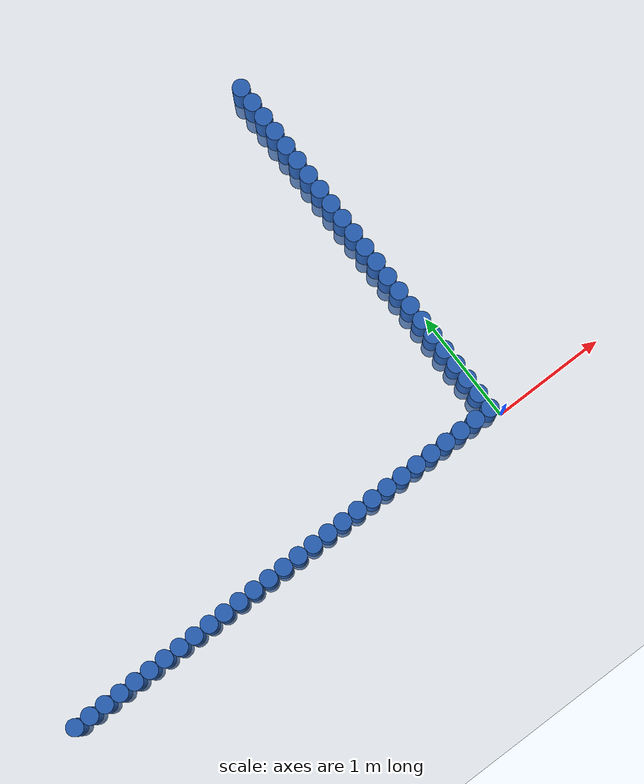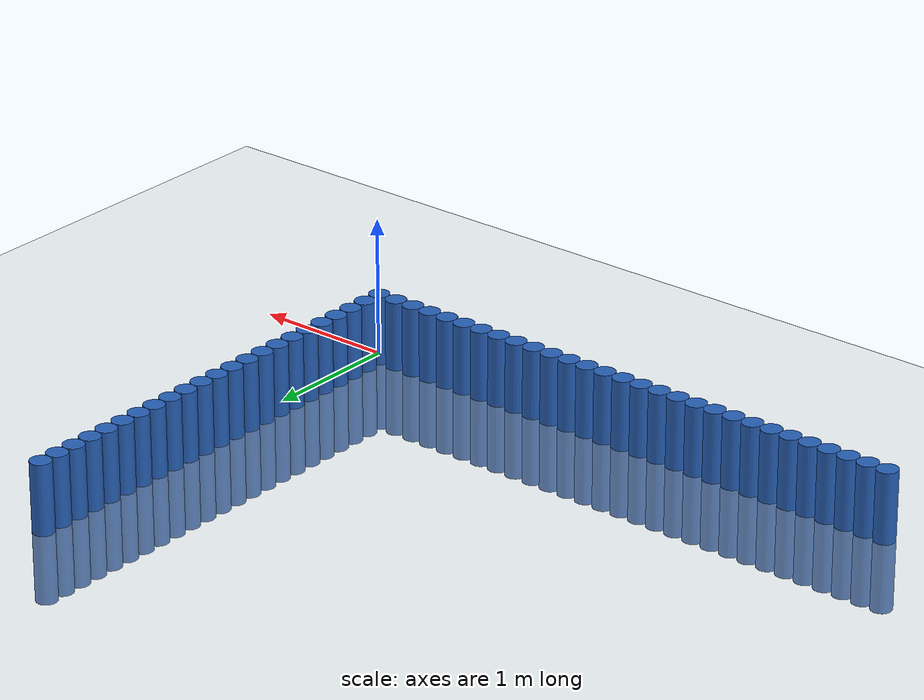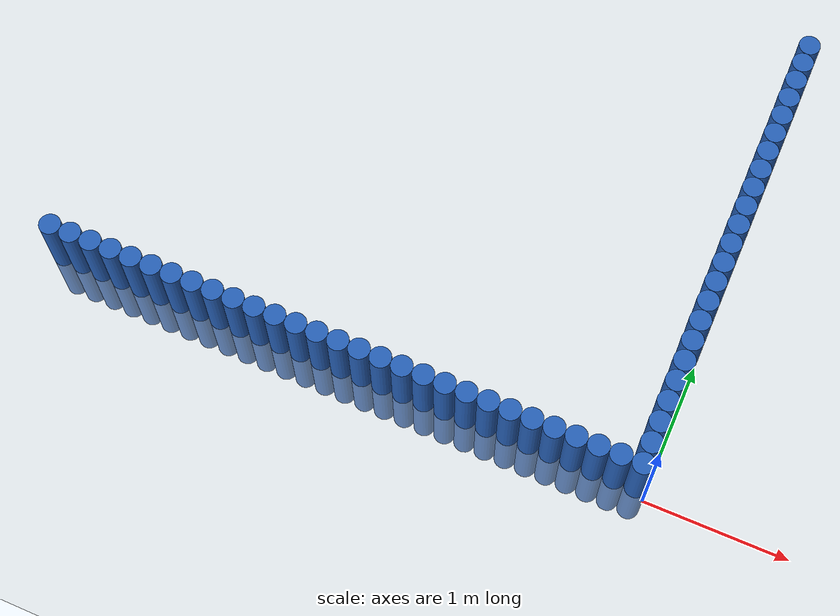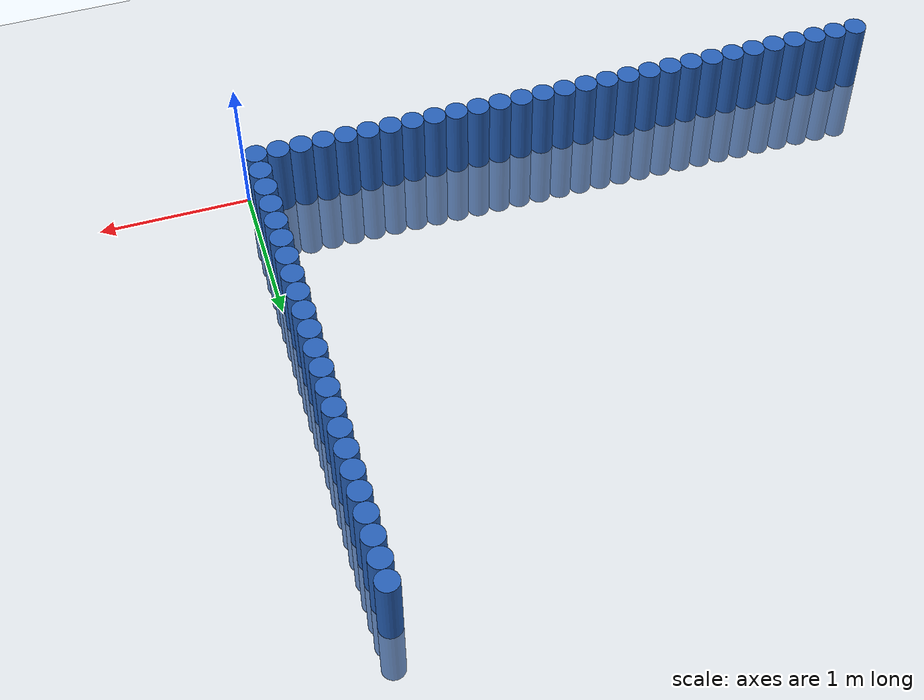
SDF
<sdf version="1.6">
 <world name="default">
  <model name="ground_plane">
   <static>1</static>
   <link name="link">
    <collision name="collision">
     <geometry><plane><normal>0 0 1</normal><size>100 100</size></plane></geometry>
     <surface><friction><ode><mu>100</mu><mu2>50</mu2></ode></friction></surface>
    </collision>
    <visual name="visual">
     <cast_shadows>0</cast_shadows>
     <geometry><plane><normal>0 0 1</normal><size>100 100</size></plane></geometry>
     <material>
      <script><uri>file://media/materials/scripts/gazebo.material</uri><name>Gazebo/Grey</name></script>
     </material>
    </visual>
   </link>
  </model>
  <model name="unit_cylinder_0">
   <static>1</static>
   <pose>-0.075000 0.075000 0.000000 0.000000 0.000000 0.000000</pose>
   <link name="link">
    <inertial>
     <mass>1</mass>
     <inertia><ixx>0.145833</ixx><ixy>0</ixy><ixz>0</ixz><iyy>0.145833</iyy><iyz>0</iyz><izz>0.125</izz></inertia>
    </inertial>
    <collision name="collision">
     <geometry><cylinder><radius>0.075000</radius><length>1</length></cylinder></geometry>
    </collision>
    <visual name="visual">
     <geometry><cylinder><radius>0.075000</radius><length>1</length></cylinder></geometry>
     <material>
      <ambient>0.152000 0.379000 0.720000 1</ambient>
      <diffuse>0.152000 0.379000 0.720000 1</diffuse>
     </material>
     <material>
      <script><name>Gazebo/Grey</name><uri>file://media/materials/scripts/gazebo.material</uri></script>
     </material>
    </visual>
   </link>
  </model>
  <model name="unit_cylinder_1">
   <static>1</static>
   <pose>-0.225000 0.075000 0.000000 0.000000 0.000000 0.000000</pose>
   <link name="link">
    <inertial>
     <mass>1</mass>
     <inertia><ixx>0.145833</ixx><ixy>0</ixy><ixz>0</ixz><iyy>0.145833</iyy><iyz>0</iyz><izz>0.125</izz></inertia>
    </inertial>
    <collision name="collision">
     <geometry><cylinder><radius>0.075000</radius><length>1</length></cylinder></geometry>
    </collision>
    <visual name="visual">
     <geometry><cylinder><radius>0.075000</radius><length>1</length></cylinder></geometry>
     <material>
      <ambient>0.152000 0.379000 0.720000 1</ambient>
      <diffuse>0.152000 0.379000 0.720000 1</diffuse>
     </material>
     <material>
      <script><name>Gazebo/Grey</name><uri>file://media/materials/scripts/gazebo.material</uri></script>
     </material>
    </visual>
   </link>
  </model>
  <model name="unit_cylinder_2">
   <static>1</static>
   <pose>-0.375000 0.075000 0.000000 0.000000 0.000000 0.000000</pose>
   <link name="link">
    <inertial>
     <mass>1</mass>
     <inertia><ixx>0.145833</ixx><ixy>0</ixy><ixz>0</ixz><iyy>0.145833</iyy><iyz>0</iyz><izz>0.125</izz></inertia>
    </inertial>
    <collision name="collision">
     <geometry><cylinder><radius>0.075000</radius><length>1</length></cylinder></geometry>
    </collision>
    <visual name="visual">
     <geometry><cylinder><radius>0.075000</radius><length>1</length></cylinder></geometry>
     <material>
      <ambient>0.152000 0.379000 0.720000 1</ambient>
      <diffuse>0.152000 0.379000 0.720000 1</diffuse>
     </material>
     <material>
      <script><name>Gazebo/Grey</name><uri>file://media/materials/scripts/gazebo.material</uri></script>
     </material>
    </visual>
   </link>
  </model>
  <model name="unit_cylinder_3">
   <static>1</static>
   <pose>-0.525000 0.075000 0.000000 0.000000 0.000000 0.000000</pose>
   <link name="link">
    <inertial>
     <mass>1</mass>
     <inertia><ixx>0.145833</ixx><ixy>0</ixy><ixz>0</ixz><iyy>0.145833</iyy><iyz>0</iyz><izz>0.125</izz></inertia>
    </inertial>
    <collision name="collision">
     <geometry><cylinder><radius>0.075000</radius><length>1</length></cylinder></geometry>
    </collision>
    <visual name="visual">
     <geometry><cylinder><radius>0.075000</radius><length>1</length></cylinder></geometry>
     <material>
      <ambient>0.152000 0.379000 0.720000 1</ambient>
      <diffuse>0.152000 0.379000 0.720000 1</diffuse>
     </material>
     <material>
      <script><name>Gazebo/Grey</name><uri>file://media/materials/scripts/gazebo.material</uri></script>
     </material>
    </visual>
   </link>
  </model>
  <model name="unit_cylinder_4">
   <static>1</static>
   <pose>-0.675000 0.075000 0.000000 0.000000 0.000000 0.000000</pose>
   <link name="link">
    <inertial>
     <mass>1</mass>
     <inertia><ixx>0.145833</ixx><ixy>0</ixy><ixz>0</ixz><iyy>0.145833</iyy><iyz>0</iyz><izz>0.125</izz></inertia>
    </inertial>
    <collision name="collision">
     <geometry><cylinder><radius>0.075000</radius><length>1</length></cylinder></geometry>
    </collision>
    <visual name="visual">
     <geometry><cylinder><radius>0.075000</radius><length>1</length></cylinder></geometry>
     <material>
      <ambient>0.152000 0.379000 0.720000 1</ambient>
      <diffuse>0.152000 0.379000 0.720000 1</diffuse>
     </material>
     <material>
      <script><name>Gazebo/Grey</name><uri>file://media/materials/scripts/gazebo.material</uri></script>
     </material>
    </visual>
   </link>
  </model>
  <model name="unit_cylinder_5">
   <static>1</static>
   <pose>-0.825000 0.075000 0.000000 0.000000 0.000000 0.000000</pose>
   <link name="link">
    <inertial>
     <mass>1</mass>
     <inertia><ixx>0.145833</ixx><ixy>0</ixy><ixz>0</ixz><iyy>0.145833</iyy><iyz>0</iyz><izz>0.125</izz></inertia>
    </inertial>
    <collision name="collision">
     <geometry><cylinder><radius>0.075000</radius><length>1</length></cylinder></geometry>
    </collision>
    <visual name="visual">
     <geometry><cylinder><radius>0.075000</radius><length>1</length></cylinder></geometry>
     <material>
      <ambient>0.152000 0.379000 0.720000 1</ambient>
      <diffuse>0.152000 0.379000 0.720000 1</diffuse>
     </material>
     <material>
      <script><name>Gazebo/Grey</name><uri>file://media/materials/scripts/gazebo.material</uri></script>
     </material>
    </visual>
   </link>
  </model>
  <model name="unit_cylinder_6">
   <static>1</static>
   <pose>-0.975000 0.075000 0.000000 0.000000 0.000000 0.000000</pose>
   <link name="link">
    <inertial>
     <mass>1</mass>
     <inertia><ixx>0.145833</ixx><ixy>0</ixy><ixz>0</ixz><iyy>0.145833</iyy><iyz>0</iyz><izz>0.125</izz></inertia>
    </inertial>
    <collision name="collision">
     <geometry><cylinder><radius>0.075000</radius><length>1</length></cylinder></geometry>
    </collision>
    <visual name="visual">
     <geometry><cylinder><radius>0.075000</radius><length>1</length></cylinder></geometry>
     <material>
      <ambient>0.152000 0.379000 0.720000 1</ambient>
      <diffuse>0.152000 0.379000 0.720000 1</diffuse>
     </material>
     <material>
      <script><name>Gazebo/Grey</name><uri>file://media/materials/scripts/gazebo.material</uri></script>
     </material>
    </visual>
   </link>
  </model>
  <model name="unit_cylinder_7">
   <static>1</static>
   <pose>-1.125000 0.075000 0.000000 0.000000 0.000000 0.000000</pose>
   <link name="link">
    <inertial>
     <mass>1</mass>
     <inertia><ixx>0.145833</ixx><ixy>0</ixy><ixz>0</ixz><iyy>0.145833</iyy><iyz>0</iyz><izz>0.125</izz></inertia>
    </inertial>
    <collision name="collision">
     <geometry><cylinder><radius>0.075000</radius><length>1</length></cylinder></geometry>
    </collision>
    <visual name="visual">
     <geometry><cylinder><radius>0.075000</radius><length>1</length></cylinder></geometry>
     <material>
      <ambient>0.152000 0.379000 0.720000 1</ambient>
      <diffuse>0.152000 0.379000 0.720000 1</diffuse>
     </material>
     <material>
      <script><name>Gazebo/Grey</name><uri>file://media/materials/scripts/gazebo.material</uri></script>
     </material>
    </visual>
   </link>
  </model>
  <model name="unit_cylinder_8">
   <static>1</static>
   <pose>-1.275000 0.075000 0.000000 0.000000 0.000000 0.000000</pose>
   <link name="link">
    <inertial>
     <mass>1</mass>
     <inertia><ixx>0.145833</ixx><ixy>0</ixy><ixz>0</ixz><iyy>0.145833</iyy><iyz>0</iyz><izz>0.125</izz></inertia>
    </inertial>
    <collision name="collision">
     <geometry><cylinder><radius>0.075000</radius><length>1</length></cylinder></geometry>
    </collision>
    <visual name="visual">
     <geometry><cylinder><radius>0.075000</radius><length>1</length></cylinder></geometry>
     <material>
      <ambient>0.152000 0.379000 0.720000 1</ambient>
      <diffuse>0.152000 0.379000 0.720000 1</diffuse>
     </material>
     <material>
      <script><name>Gazebo/Grey</name><uri>file://media/materials/scripts/gazebo.material</uri></script>
     </material>
    </visual>
   </link>
  </model>
  <model name="unit_cylinder_9">
   <static>1</static>
   <pose>-1.425000 0.075000 0.000000 0.000000 0.000000 0.000000</pose>
   <link name="link">
    <inertial>
     <mass>1</mass>
     <inertia><ixx>0.145833</ixx><ixy>0</ixy><ixz>0</ixz><iyy>0.145833</iyy><iyz>0</iyz><izz>0.125</izz></inertia>
    </inertial>
    <collision name="collision">
     <geometry><cylinder><radius>0.075000</radius><length>1</length></cylinder></geometry>
    </collision>
    <visual name="visual">
     <geometry><cylinder><radius>0.075000</radius><length>1</length></cylinder></geometry>
     <material>
      <ambient>0.152000 0.379000 0.720000 1</ambient>
      <diffuse>0.152000 0.379000 0.720000 1</diffuse>
     </material>
     <material>
      <script><name>Gazebo/Grey</name><uri>file://media/materials/scripts/gazebo.material</uri></script>
     </material>
    </visual>
   </link>
  </model>
  <model name="unit_cylinder_10">
   <static>1</static>
   <pose>-1.575000 0.075000 0.000000 0.000000 0.000000 0.000000</pose>
   <link name="link">
    <inertial>
     <mass>1</mass>
     <inertia><ixx>0.145833</ixx><ixy>0</ixy><ixz>0</ixz><iyy>0.145833</iyy><iyz>0</iyz><izz>0.125</izz></inertia>
    </inertial>
    <collision name="collision">
     <geometry><cylinder><radius>0.075000</radius><length>1</length></cylinder></geometry>
    </collision>
    <visual name="visual">
     <geometry><cylinder><radius>0.075000</radius><length>1</length></cylinder></geometry>
     <material>
      <ambient>0.152000 0.379000 0.720000 1</ambient>
      <diffuse>0.152000 0.379000 0.720000 1</diffuse>
     </material>
     <material>
      <script><name>Gazebo/Grey</name><uri>file://media/materials/scripts/gazebo.material</uri></script>
     </material>
    </visual>
   </link>
  </model>
  <model name="unit_cylinder_11">
   <static>1</static>
   <pose>-1.725000 0.075000 0.000000 0.000000 0.000000 0.000000</pose>
   <link name="link">
    <inertial>
     <mass>1</mass>
     <inertia><ixx>0.145833</ixx><ixy>0</ixy><ixz>0</ixz><iyy>0.145833</iyy><iyz>0</iyz><izz>0.125</izz></inertia>
    </inertial>
    <collision name="collision">
     <geometry><cylinder><radius>0.075000</radius><length>1</length></cylinder></geometry>
    </collision>
    <visual name="visual">
     <geometry><cylinder><radius>0.075000</radius><length>1</length></cylinder></geometry>
     <material>
      <ambient>0.152000 0.379000 0.720000 1</ambient>
      <diffuse>0.152000 0.379000 0.720000 1</diffuse>
     </material>
     <material>
      <script><name>Gazebo/Grey</name><uri>file://media/materials/scripts/gazebo.material</uri></script>
     </material>
    </visual>
   </link>
  </model>
  <model name="unit_cylinder_12">
   <static>1</static>
   <pose>-1.875000 0.075000 0.000000 0.000000 0.000000 0.000000</pose>
   <link name="link">
    <inertial>
     <mass>1</mass>
     <inertia><ixx>0.145833</ixx><ixy>0</ixy><ixz>0</ixz><iyy>0.145833</iyy><iyz>0</iyz><izz>0.125</izz></inertia>
    </inertial>
    <collision name="collision">
     <geometry><cylinder><radius>0.075000</radius><length>1</length></cylinder></geometry>
    </collision>
    <visual name="visual">
     <geometry><cylinder><radius>0.075000</radius><length>1</length></cylinder></geometry>
     <material>
      <ambient>0.152000 0.379000 0.720000 1</ambient>
      <diffuse>0.152000 0.379000 0.720000 1</diffuse>
     </material>
     <material>
      <script><name>Gazebo/Grey</name><uri>file://media/materials/scripts/gazebo.material</uri></script>
     </material>
    </visual>
   </link>
  </model>
  <model name="unit_cylinder_13">
   <static>1</static>
   <pose>-2.025000 0.075000 0.000000 0.000000 0.000000 0.000000</pose>
   <link name="link">
    <inertial>
     <mass>1</mass>
     <inertia><ixx>0.145833</ixx><ixy>0</ixy><ixz>0</ixz><iyy>0.145833</iyy><iyz>0</iyz><izz>0.125</izz></inertia>
    </inertial>
    <collision name="collision">
     <geometry><cylinder><radius>0.075000</radius><length>1</length></cylinder></geometry>
    </collision>
    <visual name="visual">
     <geometry><cylinder><radius>0.075000</radius><length>1</length></cylinder></geometry>
     <material>
      <ambient>0.152000 0.379000 0.720000 1</ambient>
      <diffuse>0.152000 0.379000 0.720000 1</diffuse>
     </material>
     <material>
      <script><name>Gazebo/Grey</name><uri>file://media/materials/scripts/gazebo.material</uri></script>
     </material>
    </visual>
   </link>
  </model>
  <model name="unit_cylinder_14">
   <static>1</static>
   <pose>-2.175000 0.075000 0.000000 0.000000 0.000000 0.000000</pose>
   <link name="link">
    <inertial>
     <mass>1</mass>
     <inertia><ixx>0.145833</ixx><ixy>0</ixy><ixz>0</ixz><iyy>0.145833</iyy><iyz>0</iyz><izz>0.125</izz></inertia>
    </inertial>
    <collision name="collision">
     <geometry><cylinder><radius>0.075000</radius><length>1</length></cylinder></geometry>
    </collision>
    <visual name="visual">
     <geometry><cylinder><radius>0.075000</radius><length>1</length></cylinder></geometry>
     <material>
      <ambient>0.152000 0.379000 0.720000 1</ambient>
      <diffuse>0.152000 0.379000 0.720000 1</diffuse>
     </material>
     <material>
      <script><name>Gazebo/Grey</name><uri>file://media/materials/scripts/gazebo.material</uri></script>
     </material>
    </visual>
   </link>
  </model>
  <model name="unit_cylinder_15">
   <static>1</static>
   <pose>-2.325000 0.075000 0.000000 0.000000 0.000000 0.000000</pose>
   <link name="link">
    <inertial>
     <mass>1</mass>
     <inertia><ixx>0.145833</ixx><ixy>0</ixy><ixz>0</ixz><iyy>0.145833</iyy><iyz>0</iyz><izz>0.125</izz></inertia>
    </inertial>
    <collision name="collision">
     <geometry><cylinder><radius>0.075000</radius><length>1</length></cylinder></geometry>
    </collision>
    <visual name="visual">
     <geometry><cylinder><radius>0.075000</radius><length>1</length></cylinder></geometry>
     <material>
      <ambient>0.152000 0.379000 0.720000 1</ambient>
      <diffuse>0.152000 0.379000 0.720000 1</diffuse>
     </material>
     <material>
      <script><name>Gazebo/Grey</name><uri>file://media/materials/scripts/gazebo.material</uri></script>
     </material>
    </visual>
   </link>
  </model>
  <model name="unit_cylinder_16">
   <static>1</static>
   <pose>-2.475000 0.075000 0.000000 0.000000 0.000000 0.000000</pose>
   <link name="link">
    <inertial>
     <mass>1</mass>
     <inertia><ixx>0.145833</ixx><ixy>0</ixy><ixz>0</ixz><iyy>0.145833</iyy><iyz>0</iyz><izz>0.125</izz></inertia>
    </inertial>
    <collision name="collision">
     <geometry><cylinder><radius>0.075000</radius><length>1</length></cylinder></geometry>
    </collision>
    <visual name="visual">
     <geometry><cylinder><radius>0.075000</radius><length>1</length></cylinder></geometry>
     <material>
      <ambient>0.152000 0.379000 0.720000 1</ambient>
      <diffuse>0.152000 0.379000 0.720000 1</diffuse>
     </material>
     <material>
      <script><name>Gazebo/Grey</name><uri>file://media/materials/scripts/gazebo.material</uri></script>
     </material>
    </visual>
   </link>
  </model>
  <model name="unit_cylinder_17">
   <static>1</static>
   <pose>-2.625000 0.075000 0.000000 0.000000 0.000000 0.000000</pose>
   <link name="link">
    <inertial>
     <mass>1</mass>
     <inertia><ixx>0.145833</ixx><ixy>0</ixy><ixz>0</ixz><iyy>0.145833</iyy><iyz>0</iyz><izz>0.125</izz></inertia>
    </inertial>
    <collision name="collision">
     <geometry><cylinder><radius>0.075000</radius><length>1</length></cylinder></geometry>
    </collision>
    <visual name="visual">
     <geometry><cylinder><radius>0.075000</radius><length>1</length></cylinder></geometry>
     <material>
      <ambient>0.152000 0.379000 0.720000 1</ambient>
      <diffuse>0.152000 0.379000 0.720000 1</diffuse>
     </material>
     <material>
      <script><name>Gazebo/Grey</name><uri>file://media/materials/scripts/gazebo.material</uri></script>
     </material>
    </visual>
   </link>
  </model>
  <model name="unit_cylinder_18">
   <static>1</static>
   <pose>-2.775000 0.075000 0.000000 0.000000 0.000000 0.000000</pose>
   <link name="link">
    <inertial>
     <mass>1</mass>
     <inertia><ixx>0.145833</ixx><ixy>0</ixy><ixz>0</ixz><iyy>0.145833</iyy><iyz>0</iyz><izz>0.125</izz></inertia>
    </inertial>
    <collision name="collision">
     <geometry><cylinder><radius>0.075000</radius><length>1</length></cylinder></geometry>
    </collision>
    <visual name="visual">
     <geometry><cylinder><radius>0.075000</radius><length>1</length></cylinder></geometry>
     <material>
      <ambient>0.152000 0.379000 0.720000 1</ambient>
      <diffuse>0.152000 0.379000 0.720000 1</diffuse>
     </material>
     <material>
      <script><name>Gazebo/Grey</name><uri>file://media/materials/scripts/gazebo.material</uri></script>
     </material>
    </visual>
   </link>
  </model>
  <model name="unit_cylinder_19">
   <static>1</static>
   <pose>-2.925000 0.075000 0.000000 0.000000 0.000000 0.000000</pose>
   <link name="link">
    <inertial>
     <mass>1</mass>
     <inertia><ixx>0.145833</ixx><ixy>0</ixy><ixz>0</ixz><iyy>0.145833</iyy><iyz>0</iyz><izz>0.125</izz></inertia>
    </inertial>
    <collision name="collision">
     <geometry><cylinder><radius>0.075000</radius><length>1</length></cylinder></geometry>
    </collision>
    <visual name="visual">
     <geometry><cylinder><radius>0.075000</radius><length>1</length></cylinder></geometry>
     <material>
      <ambient>0.152000 0.379000 0.720000 1</ambient>
      <diffuse>0.152000 0.379000 0.720000 1</diffuse>
     </material>
     <material>
      <script><name>Gazebo/Grey</name><uri>file://media/materials/scripts/gazebo.material</uri></script>
     </material>
    </visual>
   </link>
  </model>
  <model name="unit_cylinder_20">
   <static>1</static>
   <pose>-3.075000 0.075000 0.000000 0.000000 0.000000 0.000000</pose>
   <link name="link">
    <inertial>
     <mass>1</mass>
     <inertia><ixx>0.145833</ixx><ixy>0</ixy><ixz>0</ixz><iyy>0.145833</iyy><iyz>0</iyz><izz>0.125</izz></inertia>
    </inertial>
    <collision name="collision">
     <geometry><cylinder><radius>0.075000</radius><length>1</length></cylinder></geometry>
    </collision>
    <visual name="visual">
     <geometry><cylinder><radius>0.075000</radius><length>1</length></cylinder></geometry>
     <material>
      <ambient>0.152000 0.379000 0.720000 1</ambient>
      <diffuse>0.152000 0.379000 0.720000 1</diffuse>
     </material>
     <material>
      <script><name>Gazebo/Grey</name><uri>file://media/materials/scripts/gazebo.material</uri></script>
     </material>
    </visual>
   </link>
  </model>
  <model name="unit_cylinder_21">
   <static>1</static>
   <pose>-3.225000 0.075000 0.000000 0.000000 0.000000 0.000000</pose>
   <link name="link">
    <inertial>
     <mass>1</mass>
     <inertia><ixx>0.145833</ixx><ixy>0</ixy><ixz>0</ixz><iyy>0.145833</iyy><iyz>0</iyz><izz>0.125</izz></inertia>
    </inertial>
    <collision name="collision">
     <geometry><cylinder><radius>0.075000</radius><length>1</length></cylinder></geometry>
    </collision>
    <visual name="visual">
     <geometry><cylinder><radius>0.075000</radius><length>1</length></cylinder></geometry>
     <material>
      <ambient>0.152000 0.379000 0.720000 1</ambient>
      <diffuse>0.152000 0.379000 0.720000 1</diffuse>
     </material>
     <material>
      <script><name>Gazebo/Grey</name><uri>file://media/materials/scripts/gazebo.material</uri></script>
     </material>
    </visual>
   </link>
  </model>
  <model name="unit_cylinder_22">
   <static>1</static>
   <pose>-3.375000 0.075000 0.000000 0.000000 0.000000 0.000000</pose>
   <link name="link">
    <inertial>
     <mass>1</mass>
     <inertia><ixx>0.145833</ixx><ixy>0</ixy><ixz>0</ixz><iyy>0.145833</iyy><iyz>0</iyz><izz>0.125</izz></inertia>
    </inertial>
    <collision name="collision">
     <geometry><cylinder><radius>0.075000</radius><length>1</length></cylinder></geometry>
    </collision>
    <visual name="visual">
     <geometry><cylinder><radius>0.075000</radius><length>1</length></cylinder></geometry>
     <material>
      <ambient>0.152000 0.379000 0.720000 1</ambient>
      <diffuse>0.152000 0.379000 0.720000 1</diffuse>
     </material>
     <material>
      <script><name>Gazebo/Grey</name><uri>file://media/materials/scripts/gazebo.material</uri></script>
     </material>
    </visual>
   </link>
  </model>
  <model name="unit_cylinder_23">
   <static>1</static>
   <pose>-3.525000 0.075000 0.000000 0.000000 0.000000 0.000000</pose>
   <link name="link">
    <inertial>
     <mass>1</mass>
     <inertia><ixx>0.145833</ixx><ixy>0</ixy><ixz>0</ixz><iyy>0.145833</iyy><iyz>0</iyz><izz>0.125</izz></inertia>
    </inertial>
    <collision name="collision">
     <geometry><cylinder><radius>0.075000</radius><length>1</length></cylinder></geometry>
    </collision>
    <visual name="visual">
     <geometry><cylinder><radius>0.075000</radius><length>1</length></cylinder></geometry>
     <material>
      <ambient>0.152000 0.379000 0.720000 1</ambient>
      <diffuse>0.152000 0.379000 0.720000 1</diffuse>
     </material>
     <material>
      <script><name>Gazebo/Grey</name><uri>file://media/materials/scripts/gazebo.material</uri></script>
     </material>
    </visual>
   </link>
  </model>
  <model name="unit_cylinder_24">
   <static>1</static>
   <pose>-3.675000 0.075000 0.000000 0.000000 0.000000 0.000000</pose>
   <link name="link">
    <inertial>
     <mass>1</mass>
     <inertia><ixx>0.145833</ixx><ixy>0</ixy><ixz>0</ixz><iyy>0.145833</iyy><iyz>0</iyz><izz>0.125</izz></inertia>
    </inertial>
    <collision name="collision">
     <geometry><cylinder><radius>0.075000</radius><length>1</length></cylinder></geometry>
    </collision>
    <visual name="visual">
     <geometry><cylinder><radius>0.075000</radius><length>1</length></cylinder></geometry>
     <material>
      <ambient>0.152000 0.379000 0.720000 1</ambient>
      <diffuse>0.152000 0.379000 0.720000 1</diffuse>
     </material>
     <material>
      <script><name>Gazebo/Grey</name><uri>file://media/materials/scripts/gazebo.material</uri></script>
     </material>
    </visual>
   </link>
  </model>
  <model name="unit_cylinder_25">
   <static>1</static>
   <pose>-3.825000 0.075000 0.000000 0.000000 0.000000 0.000000</pose>
   <link name="link">
    <inertial>
     <mass>1</mass>
     <inertia><ixx>0.145833</ixx><ixy>0</ixy><ixz>0</ixz><iyy>0.145833</iyy><iyz>0</iyz><izz>0.125</izz></inertia>
    </inertial>
    <collision name="collision">
     <geometry><cylinder><radius>0.075000</radius><length>1</length></cylinder></geometry>
    </collision>
    <visual name="visual">
     <geometry><cylinder><radius>0.075000</radius><length>1</length></cylinder></geometry>
     <material>
      <ambient>0.152000 0.379000 0.720000 1</ambient>
      <diffuse>0.152000 0.379000 0.720000 1</diffuse>
     </material>
     <material>
      <script><name>Gazebo/Grey</name><uri>file://media/materials/scripts/gazebo.material</uri></script>
     </material>
    </visual>
   </link>
  </model>
  <model name="unit_cylinder_26">
   <static>1</static>
   <pose>-3.975000 0.075000 0.000000 0.000000 0.000000 0.000000</pose>
   <link name="link">
    <inertial>
     <mass>1</mass>
     <inertia><ixx>0.145833</ixx><ixy>0</ixy><ixz>0</ixz><iyy>0.145833</iyy><iyz>0</iyz><izz>0.125</izz></inertia>
    </inertial>
    <collision name="collision">
     <geometry><cylinder><radius>0.075000</radius><length>1</length></cylinder></geometry>
    </collision>
    <visual name="visual">
     <geometry><cylinder><radius>0.075000</radius><length>1</length></cylinder></geometry>
     <material>
      <ambient>0.152000 0.379000 0.720000 1</ambient>
      <diffuse>0.152000 0.379000 0.720000 1</diffuse>
     </material>
     <material>
      <script><name>Gazebo/Grey</name><uri>file://media/materials/scripts/gazebo.material</uri></script>
     </material>
    </visual>
   </link>
  </model>
  <model name="unit_cylinder_27">
   <static>1</static>
   <pose>-4.125000 0.075000 0.000000 0.000000 0.000000 0.000000</pose>
   <link name="link">
    <inertial>
     <mass>1</mass>
     <inertia><ixx>0.145833</ixx><ixy>0</ixy><ixz>0</ixz><iyy>0.145833</iyy><iyz>0</iyz><izz>0.125</izz></inertia>
    </inertial>
    <collision name="collision">
     <geometry><cylinder><radius>0.075000</radius><length>1</length></cylinder></geometry>
    </collision>
    <visual name="visual">
     <geometry><cylinder><radius>0.075000</radius><length>1</length></cylinder></geometry>
     <material>
      <ambient>0.152000 0.379000 0.720000 1</ambient>
      <diffuse>0.152000 0.379000 0.720000 1</diffuse>
     </material>
     <material>
      <script><name>Gazebo/Grey</name><uri>file://media/materials/scripts/gazebo.material</uri></script>
     </material>
    </visual>
   </link>
  </model>
  <model name="unit_cylinder_28">
   <static>1</static>
   <pose>-4.275000 0.075000 0.000000 0.000000 0.000000 0.000000</pose>
   <link name="link">
    <inertial>
     <mass>1</mass>
     <inertia><ixx>0.145833</ixx><ixy>0</ixy><ixz>0</ixz><iyy>0.145833</iyy><iyz>0</iyz><izz>0.125</izz></inertia>
    </inertial>
    <collision name="collision">
     <geometry><cylinder><radius>0.075000</radius><length>1</length></cylinder></geometry>
    </collision>
    <visual name="visual">
     <geometry><cylinder><radius>0.075000</radius><length>1</length></cylinder></geometry>
     <material>
      <ambient>0.152000 0.379000 0.720000 1</ambient>
      <diffuse>0.152000 0.379000 0.720000 1</diffuse>
     </material>
     <material>
      <script><name>Gazebo/Grey</name><uri>file://media/materials/scripts/gazebo.material</uri></script>
     </material>
    </visual>
   </link>
  </model>
  <model name="unit_cylinder_59">
   <static>1</static>
   <pose>-0.075000 0.225000 0.000000 0.000000 0.000000 0.000000</pose>
   <link name="link">
    <inertial>
     <mass>1</mass>
     <inertia><ixx>0.145833</ixx><ixy>0</ixy><ixz>0</ixz><iyy>0.145833</iyy><iyz>0</iyz><izz>0.125</izz></inertia>
    </inertial>
    <collision name="collision">
     <geometry><cylinder><radius>0.075000</radius><length>1</length></cylinder></geometry>
    </collision>
    <visual name="visual">
     <geometry><cylinder><radius>0.075000</radius><length>1</length></cylinder></geometry>
     <material>
      <ambient>0.152000 0.379000 0.720000 1</ambient>
      <diffuse>0.152000 0.379000 0.720000 1</diffuse>
     </material>
     <material>
      <script><name>Gazebo/Grey</name><uri>file://media/materials/scripts/gazebo.material</uri></script>
     </material>
    </visual>
   </link>
  </model>
  <model name="unit_cylinder_61">
   <static>1</static>
   <pose>-0.075000 0.375000 0.000000 0.000000 0.000000 0.000000</pose>
   <link name="link">
    <inertial>
     <mass>1</mass>
     <inertia><ixx>0.145833</ixx><ixy>0</ixy><ixz>0</ixz><iyy>0.145833</iyy><iyz>0</iyz><izz>0.125</izz></inertia>
    </inertial>
    <collision name="collision">
     <geometry><cylinder><radius>0.075000</radius><length>1</length></cylinder></geometry>
    </collision>
    <visual name="visual">
     <geometry><cylinder><radius>0.075000</radius><length>1</length></cylinder></geometry>
     <material>
      <ambient>0.152000 0.379000 0.720000 1</ambient>
      <diffuse>0.152000 0.379000 0.720000 1</diffuse>
     </material>
     <material>
      <script><name>Gazebo/Grey</name><uri>file://media/materials/scripts/gazebo.material</uri></script>
     </material>
    </visual>
   </link>
  </model>
  <model name="unit_cylinder_63">
   <static>1</static>
   <pose>-0.075000 0.525000 0.000000 0.000000 0.000000 0.000000</pose>
   <link name="link">
    <inertial>
     <mass>1</mass>
     <inertia><ixx>0.145833</ixx><ixy>0</ixy><ixz>0</ixz><iyy>0.145833</iyy><iyz>0</iyz><izz>0.125</izz></inertia>
    </inertial>
    <collision name="collision">
     <geometry><cylinder><radius>0.075000</radius><length>1</length></cylinder></geometry>
    </collision>
    <visual name="visual">
     <geometry><cylinder><radius>0.075000</radius><length>1</length></cylinder></geometry>
     <material>
      <ambient>0.152000 0.379000 0.720000 1</ambient>
      <diffuse>0.152000 0.379000 0.720000 1</diffuse>
     </material>
     <material>
      <script><name>Gazebo/Grey</name><uri>file://media/materials/scripts/gazebo.material</uri></script>
     </material>
    </visual>
   </link>
  </model>
  <model name="unit_cylinder_65">
   <static>1</static>
   <pose>-0.075000 0.675000 0.000000 0.000000 0.000000 0.000000</pose>
   <link name="link">
    <inertial>
     <mass>1</mass>
     <inertia><ixx>0.145833</ixx><ixy>0</ixy><ixz>0</ixz><iyy>0.145833</iyy><iyz>0</iyz><izz>0.125</izz></inertia>
    </inertial>
    <collision name="collision">
     <geometry><cylinder><radius>0.075000</radius><length>1</length></cylinder></geometry>
    </collision>
    <visual name="visual">
     <geometry><cylinder><radius>0.075000</radius><length>1</length></cylinder></geometry>
     <material>
      <ambient>0.152000 0.379000 0.720000 1</ambient>
      <diffuse>0.152000 0.379000 0.720000 1</diffuse>
     </material>
     <material>
      <script><name>Gazebo/Grey</name><uri>file://media/materials/scripts/gazebo.material</uri></script>
     </material>
    </visual>
   </link>
  </model>
  <model name="unit_cylinder_67">
   <static>1</static>
   <pose>-0.075000 0.825000 0.000000 0.000000 0.000000 0.000000</pose>
   <link name="link">
    <inertial>
     <mass>1</mass>
     <inertia><ixx>0.145833</ixx><ixy>0</ixy><ixz>0</ixz><iyy>0.145833</iyy><iyz>0</iyz><izz>0.125</izz></inertia>
    </inertial>
    <collision name="collision">
     <geometry><cylinder><radius>0.075000</radius><length>1</length></cylinder></geometry>
    </collision>
    <visual name="visual">
     <geometry><cylinder><radius>0.075000</radius><length>1</length></cylinder></geometry>
     <material>
      <ambient>0.152000 0.379000 0.720000 1</ambient>
      <diffuse>0.152000 0.379000 0.720000 1</diffuse>
     </material>
     <material>
      <script><name>Gazebo/Grey</name><uri>file://media/materials/scripts/gazebo.material</uri></script>
     </material>
    </visual>
   </link>
  </model>
  <model name="unit_cylinder_69">
   <static>1</static>
   <pose>-0.075000 0.975000 0.000000 0.000000 0.000000 0.000000</pose>
   <link name="link">
    <inertial>
     <mass>1</mass>
     <inertia><ixx>0.145833</ixx><ixy>0</ixy><ixz>0</ixz><iyy>0.145833</iyy><iyz>0</iyz><izz>0.125</izz></inertia>
    </inertial>
    <collision name="collision">
     <geometry><cylinder><radius>0.075000</radius><length>1</length></cylinder></geometry>
    </collision>
    <visual name="visual">
     <geometry><cylinder><radius>0.075000</radius><length>1</length></cylinder></geometry>
     <material>
      <ambient>0.152000 0.379000 0.720000 1</ambient>
      <diffuse>0.152000 0.379000 0.720000 1</diffuse>
     </material>
     <material>
      <script><name>Gazebo/Grey</name><uri>file://media/materials/scripts/gazebo.material</uri></script>
     </material>
    </visual>
   </link>
  </model>
  <model name="unit_cylinder_71">
   <static>1</static>
   <pose>-0.075000 1.125000 0.000000 0.000000 0.000000 0.000000</pose>
   <link name="link">
    <inertial>
     <mass>1</mass>
     <inertia><ixx>0.145833</ixx><ixy>0</ixy><ixz>0</ixz><iyy>0.145833</iyy><iyz>0</iyz><izz>0.125</izz></inertia>
    </inertial>
    <collision name="collision">
     <geometry><cylinder><radius>0.075000</radius><length>1</length></cylinder></geometry>
    </collision>
    <visual name="visual">
     <geometry><cylinder><radius>0.075000</radius><length>1</length></cylinder></geometry>
     <material>
      <ambient>0.152000 0.379000 0.720000 1</ambient>
      <diffuse>0.152000 0.379000 0.720000 1</diffuse>
     </material>
     <material>
      <script><name>Gazebo/Grey</name><uri>file://media/materials/scripts/gazebo.material</uri></script>
     </material>
    </visual>
   </link>
  </model>
  <model name="unit_cylinder_73">
   <static>1</static>
   <pose>-0.075000 1.275000 0.000000 0.000000 0.000000 0.000000</pose>
   <link name="link">
    <inertial>
     <mass>1</mass>
     <inertia><ixx>0.145833</ixx><ixy>0</ixy><ixz>0</ixz><iyy>0.145833</iyy><iyz>0</iyz><izz>0.125</izz></inertia>
    </inertial>
    <collision name="collision">
     <geometry><cylinder><radius>0.075000</radius><length>1</length></cylinder></geometry>
    </collision>
    <visual name="visual">
     <geometry><cylinder><radius>0.075000</radius><length>1</length></cylinder></geometry>
     <material>
      <ambient>0.152000 0.379000 0.720000 1</ambient>
      <diffuse>0.152000 0.379000 0.720000 1</diffuse>
     </material>
     <material>
      <script><name>Gazebo/Grey</name><uri>file://media/materials/scripts/gazebo.material</uri></script>
     </material>
    </visual>
   </link>
  </model>
  <model name="unit_cylinder_75">
   <static>1</static>
   <pose>-0.075000 1.425000 0.000000 0.000000 0.000000 0.000000</pose>
   <link name="link">
    <inertial>
     <mass>1</mass>
     <inertia><ixx>0.145833</ixx><ixy>0</ixy><ixz>0</ixz><iyy>0.145833</iyy><iyz>0</iyz><izz>0.125</izz></inertia>
    </inertial>
    <collision name="collision">
     <geometry><cylinder><radius>0.075000</radius><length>1</length></cylinder></geometry>
    </collision>
    <visual name="visual">
     <geometry><cylinder><radius>0.075000</radius><length>1</length></cylinder></geometry>
     <material>
      <ambient>0.152000 0.379000 0.720000 1</ambient>
      <diffuse>0.152000 0.379000 0.720000 1</diffuse>
     </material>
     <material>
      <script><name>Gazebo/Grey</name><uri>file://media/materials/scripts/gazebo.material</uri></script>
     </material>
    </visual>
   </link>
  </model>
  <model name="unit_cylinder_77">
   <static>1</static>
   <pose>-0.075000 1.575000 0.000000 0.000000 0.000000 0.000000</pose>
   <link name="link">
    <inertial>
     <mass>1</mass>
     <inertia><ixx>0.145833</ixx><ixy>0</ixy><ixz>0</ixz><iyy>0.145833</iyy><iyz>0</iyz><izz>0.125</izz></inertia>
    </inertial>
    <collision name="collision">
     <geometry><cylinder><radius>0.075000</radius><length>1</length></cylinder></geometry>
    </collision>
    <visual name="visual">
     <geometry><cylinder><radius>0.075000</radius><length>1</length></cylinder></geometry>
     <material>
      <ambient>0.152000 0.379000 0.720000 1</ambient>
      <diffuse>0.152000 0.379000 0.720000 1</diffuse>
     </material>
     <material>
      <script><name>Gazebo/Grey</name><uri>file://media/materials/scripts/gazebo.material</uri></script>
     </material>
    </visual>
   </link>
  </model>
  <model name="unit_cylinder_79">
   <static>1</static>
   <pose>-0.075000 1.725000 0.000000 0.000000 0.000000 0.000000</pose>
   <link name="link">
    <inertial>
     <mass>1</mass>
     <inertia><ixx>0.145833</ixx><ixy>0</ixy><ixz>0</ixz><iyy>0.145833</iyy><iyz>0</iyz><izz>0.125</izz></inertia>
    </inertial>
    <collision name="collision">
     <geometry><cylinder><radius>0.075000</radius><length>1</length></cylinder></geometry>
    </collision>
    <visual name="visual">
     <geometry><cylinder><radius>0.075000</radius><length>1</length></cylinder></geometry>
     <material>
      <ambient>0.152000 0.379000 0.720000 1</ambient>
      <diffuse>0.152000 0.379000 0.720000 1</diffuse>
     </material>
     <material>
      <script><name>Gazebo/Grey</name><uri>file://media/materials/scripts/gazebo.material</uri></script>
     </material>
    </visual>
   </link>
  </model>
  <model name="unit_cylinder_81">
   <static>1</static>
   <pose>-0.075000 1.875000 0.000000 0.000000 0.000000 0.000000</pose>
   <link name="link">
    <inertial>
     <mass>1</mass>
     <inertia><ixx>0.145833</ixx><ixy>0</ixy><ixz>0</ixz><iyy>0.145833</iyy><iyz>0</iyz><izz>0.125</izz></inertia>
    </inertial>
    <collision name="collision">
     <geometry><cylinder><radius>0.075000</radius><length>1</length></cylinder></geometry>
    </collision>
    <visual name="visual">
     <geometry><cylinder><radius>0.075000</radius><length>1</length></cylinder></geometry>
     <material>
      <ambient>0.152000 0.379000 0.720000 1</ambient>
      <diffuse>0.152000 0.379000 0.720000 1</diffuse>
     </material>
     <material>
      <script><name>Gazebo/Grey</name><uri>file://media/materials/scripts/gazebo.material</uri></script>
     </material>
    </visual>
   </link>
  </model>
  <model name="unit_cylinder_83">
   <static>1</static>
   <pose>-0.075000 2.025000 0.000000 0.000000 0.000000 0.000000</pose>
   <link name="link">
    <inertial>
     <mass>1</mass>
     <inertia><ixx>0.145833</ixx><ixy>0</ixy><ixz>0</ixz><iyy>0.145833</iyy><iyz>0</iyz><izz>0.125</izz></inertia>
    </inertial>
    <collision name="collision">
     <geometry><cylinder><radius>0.075000</radius><length>1</length></cylinder></geometry>
    </collision>
    <visual name="visual">
     <geometry><cylinder><radius>0.075000</radius><length>1</length></cylinder></geometry>
     <material>
      <ambient>0.152000 0.379000 0.720000 1</ambient>
      <diffuse>0.152000 0.379000 0.720000 1</diffuse>
     </material>
     <material>
      <script><name>Gazebo/Grey</name><uri>file://media/materials/scripts/gazebo.material</uri></script>
     </material>
    </visual>
   </link>
  </model>
  <model name="unit_cylinder_85">
   <static>1</static>
   <pose>-0.075000 2.175000 0.000000 0.000000 0.000000 0.000000</pose>
   <link name="link">
    <inertial>
     <mass>1</mass>
     <inertia><ixx>0.145833</ixx><ixy>0</ixy><ixz>0</ixz><iyy>0.145833</iyy><iyz>0</iyz><izz>0.125</izz></inertia>
    </inertial>
    <collision name="collision">
     <geometry><cylinder><radius>0.075000</radius><length>1</length></cylinder></geometry>
    </collision>
    <visual name="visual">
     <geometry><cylinder><radius>0.075000</radius><length>1</length></cylinder></geometry>
     <material>
      <ambient>0.152000 0.379000 0.720000 1</ambient>
      <diffuse>0.152000 0.379000 0.720000 1</diffuse>
     </material>
     <material>
      <script><name>Gazebo/Grey</name><uri>file://media/materials/scripts/gazebo.material</uri></script>
     </material>
    </visual>
   </link>
  </model>
  <model name="unit_cylinder_87">
   <static>1</static>
   <pose>-0.075000 2.325000 0.000000 0.000000 0.000000 0.000000</pose>
   <link name="link">
    <inertial>
     <mass>1</mass>
     <inertia><ixx>0.145833</ixx><ixy>0</ixy><ixz>0</ixz><iyy>0.145833</iyy><iyz>0</iyz><izz>0.125</izz></inertia>
    </inertial>
    <collision name="collision">
     <geometry><cylinder><radius>0.075000</radius><length>1</length></cylinder></geometry>
    </collision>
    <visual name="visual">
     <geometry><cylinder><radius>0.075000</radius><length>1</length></cylinder></geometry>
     <material>
      <ambient>0.152000 0.379000 0.720000 1</ambient>
      <diffuse>0.152000 0.379000 0.720000 1</diffuse>
     </material>
     <material>
      <script><name>Gazebo/Grey</name><uri>file://media/materials/scripts/gazebo.material</uri></script>
     </material>
    </visual>
   </link>
  </model>
  <model name="unit_cylinder_89">
   <static>1</static>
   <pose>-0.075000 2.475000 0.000000 0.000000 0.000000 0.000000</pose>
   <link name="link">
    <inertial>
     <mass>1</mass>
     <inertia><ixx>0.145833</ixx><ixy>0</ixy><ixz>0</ixz><iyy>0.145833</iyy><iyz>0</iyz><izz>0.125</izz></inertia>
    </inertial>
    <collision name="collision">
     <geometry><cylinder><radius>0.075000</radius><length>1</length></cylinder></geometry>
    </collision>
    <visual name="visual">
     <geometry><cylinder><radius>0.075000</radius><length>1</length></cylinder></geometry>
     <material>
      <ambient>0.152000 0.379000 0.720000 1</ambient>
      <diffuse>0.152000 0.379000 0.720000 1</diffuse>
     </material>
     <material>
      <script><name>Gazebo/Grey</name><uri>file://media/materials/scripts/gazebo.material</uri></script>
     </material>
    </visual>
   </link>
  </model>
  <model name="unit_cylinder_91">
   <static>1</static>
   <pose>-0.075000 2.625000 0.000000 0.000000 0.000000 0.000000</pose>
   <link name="link">
    <inertial>
     <mass>1</mass>
     <inertia><ixx>0.145833</ixx><ixy>0</ixy><ixz>0</ixz><iyy>0.145833</iyy><iyz>0</iyz><izz>0.125</izz></inertia>
    </inertial>
    <collision name="collision">
     <geometry><cylinder><radius>0.075000</radius><length>1</length></cylinder></geometry>
    </collision>
    <visual name="visual">
     <geometry><cylinder><radius>0.075000</radius><length>1</length></cylinder></geometry>
     <material>
      <ambient>0.152000 0.379000 0.720000 1</ambient>
      <diffuse>0.152000 0.379000 0.720000 1</diffuse>
     </material>
     <material>
      <script><name>Gazebo/Grey</name><uri>file://media/materials/scripts/gazebo.material</uri></script>
     </material>
    </visual>
   </link>
  </model>
  <model name="unit_cylinder_93">
   <static>1</static>
   <pose>-0.075000 2.775000 0.000000 0.000000 0.000000 0.000000</pose>
   <link name="link">
    <inertial>
     <mass>1</mass>
     <inertia><ixx>0.145833</ixx><ixy>0</ixy><ixz>0</ixz><iyy>0.145833</iyy><iyz>0</iyz><izz>0.125</izz></inertia>
    </inertial>
    <collision name="collision">
     <geometry><cylinder><radius>0.075000</radius><length>1</length></cylinder></geometry>
    </collision>
    <visual name="visual">
     <geometry><cylinder><radius>0.075000</radius><length>1</length></cylinder></geometry>
     <material>
      <ambient>0.152000 0.379000 0.720000 1</ambient>
      <diffuse>0.152000 0.379000 0.720000 1</diffuse>
     </material>
     <material>
      <script><name>Gazebo/Grey</name><uri>file://media/materials/scripts/gazebo.material</uri></script>
     </material>
    </visual>
   </link>
  </model>
  <model name="unit_cylinder_95">
   <static>1</static>
   <pose>-0.075000 2.925000 0.000000 0.000000 0.000000 0.000000</pose>
   <link name="link">
    <inertial>
     <mass>1</mass>
     <inertia><ixx>0.145833</ixx><ixy>0</ixy><ixz>0</ixz><iyy>0.145833</iyy><iyz>0</iyz><izz>0.125</izz></inertia>
    </inertial>
    <collision name="collision">
     <geometry><cylinder><radius>0.075000</radius><length>1</length></cylinder></geometry>
    </collision>
    <visual name="visual">
     <geometry><cylinder><radius>0.075000</radius><length>1</length></cylinder></geometry>
     <material>
      <ambient>0.152000 0.379000 0.720000 1</ambient>
      <diffuse>0.152000 0.379000 0.720000 1</diffuse>
     </material>
     <material>
      <script><name>Gazebo/Grey</name><uri>file://media/materials/scripts/gazebo.material</uri></script>
     </material>
    </visual>
   </link>
  </model>
  <model name="unit_cylinder_97">
   <static>1</static>
   <pose>-0.075000 3.075000 0.000000 0.000000 0.000000 0.000000</pose>
   <link name="link">
    <inertial>
     <mass>1</mass>
     <inertia><ixx>0.145833</ixx><ixy>0</ixy><ixz>0</ixz><iyy>0.145833</iyy><iyz>0</iyz><izz>0.125</izz></inertia>
    </inertial>
    <collision name="collision">
     <geometry><cylinder><radius>0.075000</radius><length>1</length></cylinder></geometry>
    </collision>
    <visual name="visual">
     <geometry><cylinder><radius>0.075000</radius><length>1</length></cylinder></geometry>
     <material>
      <ambient>0.152000 0.379000 0.720000 1</ambient>
      <diffuse>0.152000 0.379000 0.720000 1</diffuse>
     </material>
     <material>
      <script><name>Gazebo/Grey</name><uri>file://media/materials/scripts/gazebo.material</uri></script>
     </material>
    </visual>
   </link>
  </model>
  <model name="unit_cylinder_99">
   <static>1</static>
   <pose>-0.075000 3.225000 0.000000 0.000000 0.000000 0.000000</pose>
   <link name="link">
    <inertial>
     <mass>1</mass>
     <inertia><ixx>0.145833</ixx><ixy>0</ixy><ixz>0</ixz><iyy>0.145833</iyy><iyz>0</iyz><izz>0.125</izz></inertia>
    </inertial>
    <collision name="collision">
     <geometry><cylinder><radius>0.075000</radius><length>1</length></cylinder></geometry>
    </collision>
    <visual name="visual">
     <geometry><cylinder><radius>0.075000</radius><length>1</length></cylinder></geometry>
     <material>
      <ambient>0.152000 0.379000 0.720000 1</ambient>
      <diffuse>0.152000 0.379000 0.720000 1</diffuse>
     </material>
     <material>
      <script><name>Gazebo/Grey</name><uri>file://media/materials/scripts/gazebo.material</uri></script>
     </material>
    </visual>
   </link>
  </model>
  <model name="unit_cylinder_101">
   <static>1</static>
   <pose>-0.075000 3.375000 0.000000 0.000000 0.000000 0.000000</pose>
   <link name="link">
    <inertial>
     <mass>1</mass>
     <inertia><ixx>0.145833</ixx><ixy>0</ixy><ixz>0</ixz><iyy>0.145833</iyy><iyz>0</iyz><izz>0.125</izz></inertia>
    </inertial>
    <collision name="collision">
     <geometry><cylinder><radius>0.075000</radius><length>1</length></cylinder></geometry>
    </collision>
    <visual name="visual">
     <geometry><cylinder><radius>0.075000</radius><length>1</length></cylinder></geometry>
     <material>
      <ambient>0.152000 0.379000 0.720000 1</ambient>
      <diffuse>0.152000 0.379000 0.720000 1</diffuse>
     </material>
     <material>
      <script><name>Gazebo/Grey</name><uri>file://media/materials/scripts/gazebo.material</uri></script>
     </material>
    </visual>
   </link>
  </model>
 </world>
</sdf>
